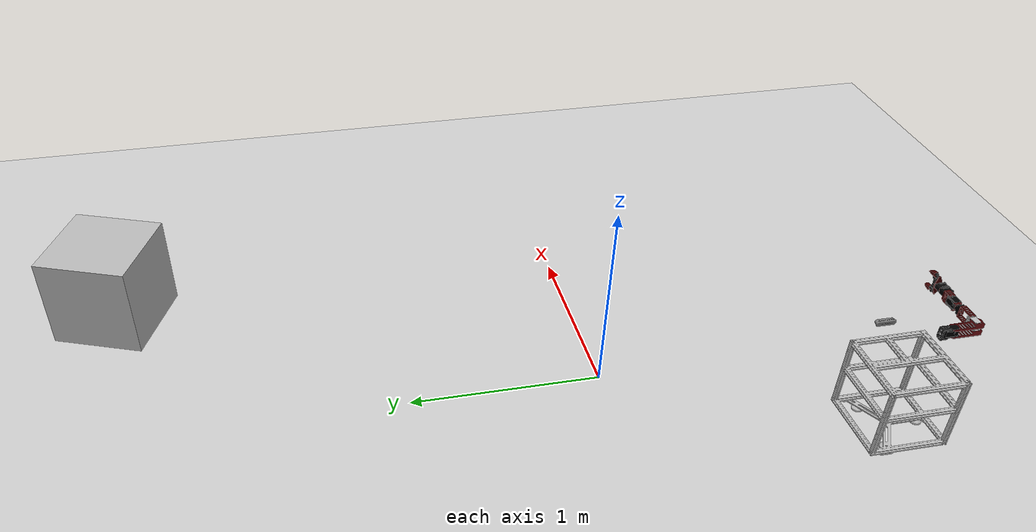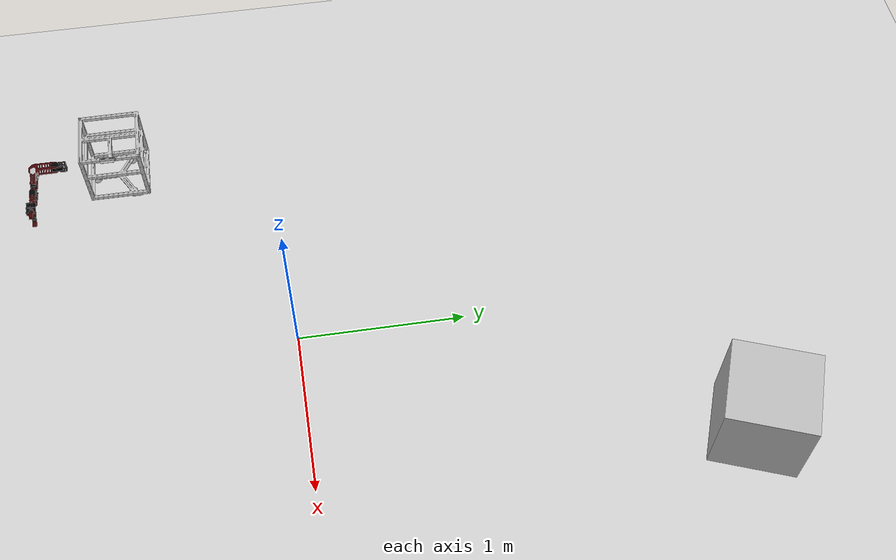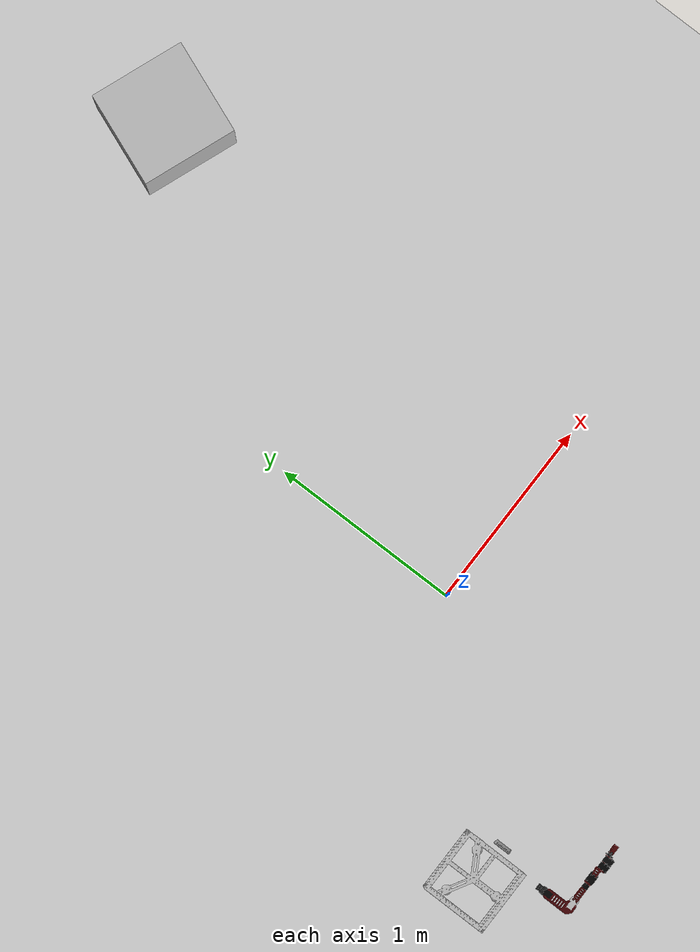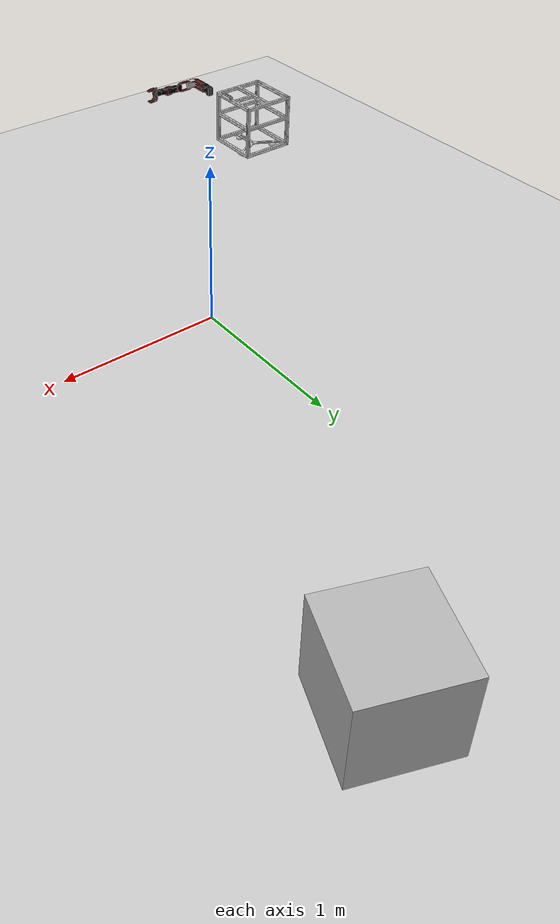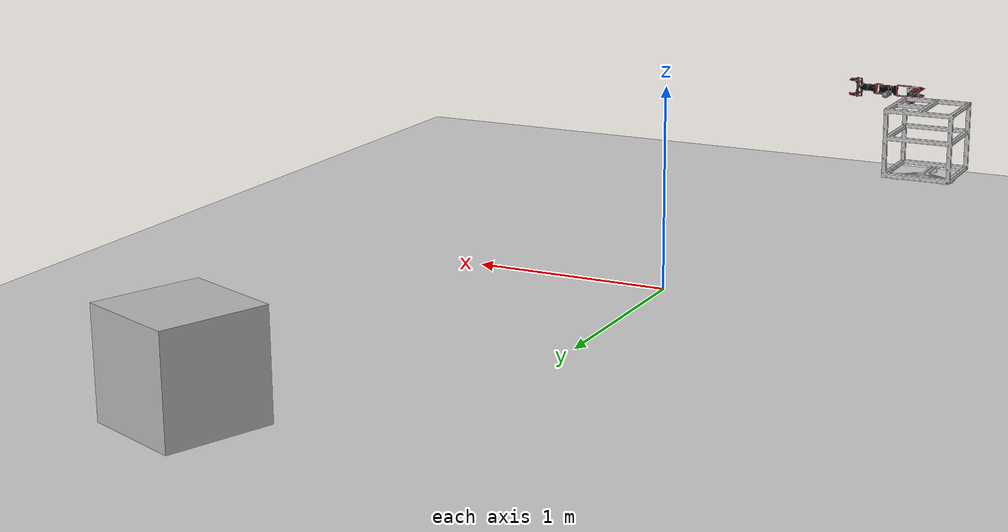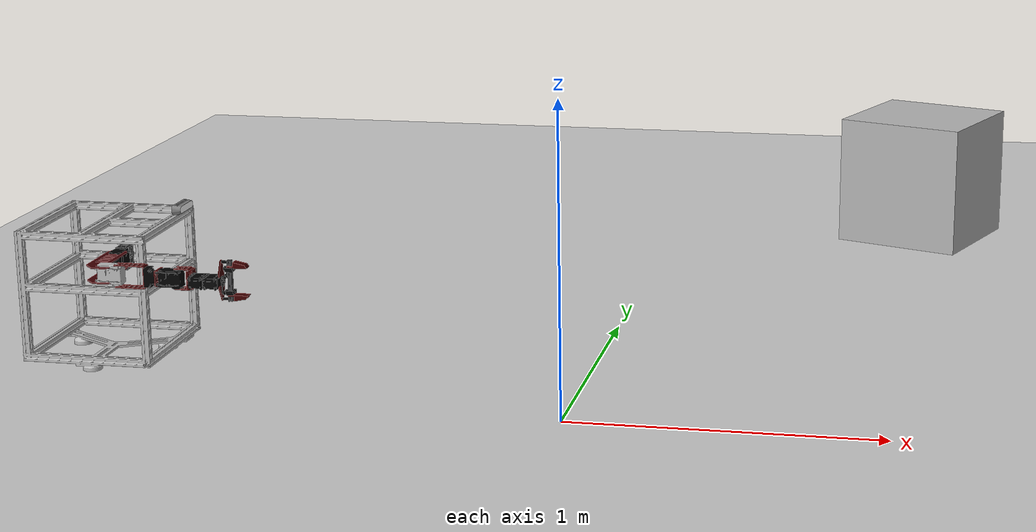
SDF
<sdf version='1.9'>
  <world name='base_world'>
    <physics name='1ms' type='ignored'>
      <max_step_size>0.001</max_step_size>
      <real_time_factor>1</real_time_factor>
      <real_time_update_rate>1000</real_time_update_rate>
    </physics>
    <plugin name='ignition::gazebo::systems::Physics' filename='ignition-gazebo-physics-system'/>
    <plugin name='ignition::gazebo::systems::UserCommands' filename='ignition-gazebo-user-commands-system'/>
    <plugin name='ignition::gazebo::systems::SceneBroadcaster' filename='ignition-gazebo-scene-broadcaster-system'/>
    <plugin name='ignition::gazebo::systems::Sensors' filename='ignition-gazebo-sensors-system'/>
    <gui fullscreen='false'>
      <plugin name='3D View' filename='GzScene3D'>
        <ignition-gui>
          <title>3D View</title>
          <property type='bool' key='showTitleBar'>false</property>
          <property type='string' key='state'>docked</property>
        </ignition-gui>
        <engine>ogre2</engine>
        <scene>scene</scene>
        <ambient_light>0.4 0.4 0.4</ambient_light>
        <background_color>0.8 0.8 0.8</background_color>
        <camera_pose>2 2 2 0 0.5 -2.5</camera_pose>
      </plugin>
      <plugin name='World control' filename='WorldControl'>
        <ignition-gui>
          <title>World control</title>
          <property type='bool' key='showTitleBar'>false</property>
          <property type='bool' key='resizable'>false</property>
          <property type='double' key='height'>72</property>
          <property type='double' key='width'>121</property>
          <property type='double' key='z'>1</property>
          <property type='string' key='state'>floating</property>
          <anchors target='3D View'>
            <line own='left' target='left'/>
            <line own='bottom' target='bottom'/>
          </anchors>
        </ignition-gui>
        <play_pause>true</play_pause>
        <step>true</step>
        <start_paused>true</start_paused>
      </plugin>
      <plugin name='World stats' filename='WorldStats'>
        <ignition-gui>
          <title>World stats</title>
          <property type='bool' key='showTitleBar'>false</property>
          <property type='bool' key='resizable'>false</property>
          <property type='double' key='height'>110</property>
          <property type='double' key='width'>290</property>
          <property type='double' key='z'>1</property>
          <property type='string' key='state'>floating</property>
          <anchors target='3D View'>
            <line own='right' target='right'/>
            <line own='bottom' target='bottom'/>
          </anchors>
        </ignition-gui>
        <sim_time>true</sim_time>
        <real_time>true</real_time>
        <real_time_factor>true</real_time_factor>
        <iterations>true</iterations>
      </plugin>
    </gui>
    <gravity>0 0 -9.8</gravity>
    <magnetic_field>6e-06 2.3e-05 -4.2e-05</magnetic_field>
    <atmosphere type='adiabatic'/>
    <scene>
      <ambient>0.4 0.4 0.4 1</ambient>
      <background>0.7 0.7 0.7 1</background>
      <shadows>true</shadows>
    </scene>
    <model name='ground_plane'>
      <static>true</static>
      <link name='link'>
        <collision name='collision'>
          <geometry>
            <plane>
              <normal>0 0 1</normal>
              <size>100 100</size>
            </plane>
          </geometry>
          <surface>
            <friction>
              <ode>
                <mu>0</mu>
                <mu2>0</mu2>
              </ode>
            </friction>
            <bounce/>
            <contact/>
          </surface>
        </collision>
        <visual name='visual'>
          <geometry>
            <plane>
              <normal>0 0 1</normal>
              <size>100 100</size>
            </plane>
          </geometry>
          <material>
            <ambient>0.8 0.8 0.8 1</ambient>
            <diffuse>0.8 0.8 0.8 1</diffuse>
            <specular>0.8 0.8 0.8 1</specular>
          </material>
        </visual>
        <pose>0 0 0 0 -0 0</pose>
        <inertial>
          <pose>0 0 0 0 -0 0</pose>
          <mass>1</mass>
          <inertia>
            <ixx>1</ixx>
            <ixy>0</ixy>
            <ixz>0</ixz>
            <iyy>1</iyy>
            <iyz>0</iyz>
            <izz>1</izz>
          </inertia>
        </inertial>
        <enable_wind>false</enable_wind>
      </link>
      <pose>0 0 0 0 -0 0</pose>
      <self_collide>false</self_collide>
    </model>

    <include>
      <uri>model://apriltag_board</uri>
      <pose> 1 2.5 0.25 0 0 1.20 </pose>
    </include>

    <include>`
      <uri>model://abv</uri>
      <pose>-1 -1 0.5 0 0 0 </pose>
      <plugin filename="libwrench_applicator.so" name="WrenchApplicator">
        <topic>gazebo/wrench_cmd</topic>
        <frame>body</frame>
      </plugin>
      <plugin filename="libpose_publisher.so" name="PosePublisher">
        <topic_name>/gazebo/robot/state</topic_name>
        <link_name>base_link</link_name>
        <rate>50</rate>
      </plugin>
    </include>

    <light name='sun' type='directional'>
      <pose>0 0 10 0 -0 0</pose>
      <cast_shadows>true</cast_shadows>
      <intensity>1</intensity>
      <direction>-0.5 0.1 -0.9</direction>
      <diffuse>0.8 0.8 0.8 1</diffuse>
      <specular>0.2 0.2 0.2 1</specular>
      <attenuation>
        <range>1000</range>
        <linear>0.01</linear>
        <constant>0.90000000000000002</constant>
        <quadratic>0.001</quadratic>
      </attenuation>
      <spot>
        <inner_angle>0</inner_angle>
        <outer_angle>0</outer_angle>
        <falloff>0</falloff>
      </spot>
    </light>
  </world>
</sdf>

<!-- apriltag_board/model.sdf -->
<sdf version="1.6">
  <model name="apriltag_board">
    <static>false</static>

    <link name="link">
      <visual name="visual">
        <pose>0 0 0 0 0 -1.57</pose>
        <geometry>
          <mesh>
            <scale>0.25 0.25 0.25</scale>
            <uri>model://apriltag_board/meshes/testBoard.dae</uri>
          </mesh>
        </geometry>
        </visual>

      <!-- collision is optional, add if you want the object to be solid -->
      <collision name="collision">
        <geometry>
          <box>
            <size>0.5 0.5 0.5</size>
          </box>
        </geometry>
      </collision>
    </link>

  </model>
</sdf>

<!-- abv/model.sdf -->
<sdf version="1.8">
  <model name="abv">
    <static>false</static>
    <self_collide>true</self_collide>

    <!-- Mobile base -->
    <include>
      <uri>model://abv_chassis</uri>
      <name>base</name>
      <pose>0 0 0.04 0 0 0</pose>
    </include>

    <include>
      <uri>model://realsense_camera</uri>
      <name>camera</name>
      <pose>0.19 0.075 0.265 0 0 0</pose>
    </include>

    <include>
      <uri>model://widow_xl</uri>
      <name>wxr</name>
      <pose>0.155 -0.205 0.3 0 -1.57 1.57</pose>
      <plugin filename="libjoint_position_controller.so" name="JointPositionController">
        <publish>gazebo/joint_positions</publish>
        <command>gazebo/joint_commands</command>
        <initial_position>0 0 0 0</initial_position>
      </plugin>
    </include>

    <joint name="camera_mount" type="fixed">
      <parent>base::vehicle_frame</parent>
      <child>camera::camera_link</child>
    </joint>

    <!-- Fixed joint (weld) between the base link and the arm’s base link -->
    <joint name="weld_arm_to_base" type="fixed">
      <parent>base::vehicle_frame</parent>
      <child>wxr::widow_xl_base</child>
    </joint>

  </model>
</sdf>

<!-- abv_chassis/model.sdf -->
<sdf version="1.8">
  <model name="abv_chassis">

    <!-- Base link with mesh + inertia -->
    <link name="base_link">
      <pose>0 0 0 0 0 0</pose>

      <collision name="collision">
        <geometry>
          <mesh>
            <uri>model://abv_chassis/meshes/abv_v1.stl</uri>
          </mesh>
        </geometry>
        <surface>
          <friction>
            <ode>
              <mu>0</mu>
              <mu2>0</mu2>
            </ode>
          </friction>
        </surface>
      </collision>

      <visual name="visual">
        <geometry>
          <mesh>
            <uri>model://abv_chassis/meshes/abv_v2.dae</uri>
          </mesh>
        </geometry>
      </visual>

      <inertial>
        <mass>12.7</mass>
        <inertia>
          <ixx>0.3</ixx><iyy>0.3</iyy><izz>0.3</izz>
          <ixy>0</ixy><ixz>0</ixz><iyz>0</iyz>
        </inertia>
      </inertial>
    </link>

    <!-- Vehicle frame -->
    <link name="vehicle_frame">
      <pose relative_to="base_link">0.01 0.065 0.2 0 0 0</pose>

      <inertial>
        <mass>0.1</mass>
        <inertia>
          <ixx>0.1</ixx><iyy>0.1</iyy><izz>0.1</izz>
          <ixy>0</ixy><ixz>0</ixz><iyz>0</iyz>
        </inertia>
      </inertial>
    </link>

    <joint name="vehicle_frame_to_base" type="fixed">
      <parent>base_link</parent>
      <child>vehicle_frame</child>
    </joint>

  </model>
</sdf>

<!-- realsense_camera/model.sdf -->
<sdf version="1.7">
  <model name="realsense_camera">
    <pose>0 0 0 0 0 0</pose>

    <link name="camera_link">
      <pose>0 0 0 0 0 0</pose>
      <visual name="camera_visual">
        <pose>0 0 0.1 0 0 1.57</pose>
        <geometry>
          	<mesh>
             <uri>model://realsense_camera/meshes/RealSense_D435.dae</uri>
            </mesh>
          </geometry>
      </visual>

      <collision name="camera_collision">
        <pose>0 0 0 0 0 0</pose>
        <geometry>
            <mesh>
             <uri>model://realsense_camera/meshes/RealSense_D435.dae</uri>
            </mesh>
        </geometry>
      </collision>

      <!-- Left camera sensor -->
      <sensor name="left_camera" type="camera">
        <pose>0 0 0 0 0 0</pose>
        <camera>
          <horizontal_fov>1.3962634</horizontal_fov>
          <image>
            <width>640</width>
            <height>480</height>
            <format>R8G8B8</format>
          </image>
          <clip>
            <near>0.5</near>
            <far>3.5</far>
          </clip>
        </camera>
        <always_on>1</always_on>
        <update_rate>10</update_rate>
        <visualize>true</visualize>
      </sensor>

      <!-- Right camera sensor -->
      <sensor name="right_camera" type="camera">
        <pose>0 0.12 0 0 0 0</pose>
        <camera>
          <horizontal_fov>1.3962634</horizontal_fov>
          <image>
            <width>640</width>
            <height>480</height>
            <format>R8G8B8</format>
          </image>
          <clip>
            <near>0.5</near>
            <far>3.5</far>
          </clip>
        </camera>
        <always_on>1</always_on>
        <update_rate>10</update_rate>
        <visualize>true</visualize>
      </sensor>

      <!-- Inertial properties -->
      <inertial>
        <mass>0.1</mass>
        <inertia>
          <ixx>1e-5</ixx>
          <iyy>1e-5</iyy>
          <izz>1e-5</izz>
          <ixy>0</ixy>
          <ixz>0</ixz>
          <iyz>0</iyz>
        </inertia>
      </inertial>

    </link>
  </model>
</sdf>

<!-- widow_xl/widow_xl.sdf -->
<sdf version='1.9'>
  <model name='widow_xl'>
    <link name='widow_xl_base'>
      <inertial>
        <pose>0 0 0 0 0 0</pose>
        <mass>0.20000000000000001</mass>
        <inertia>
          <ixx>0.0001</ixx>
          <ixy>0</ixy>
          <ixz>0</ixz>
          <iyy>0.0001</iyy>
          <iyz>0</iyz>
          <izz>0.0001</izz>
        </inertia>
      </inertial>
      <collision name='widow_xl_base_fixed_joint_lump__shoulder_mount_collision'>
        <pose>0 0 0 0 0 0</pose>
        <geometry>
          <box>
            <size>0.07 0.07 0.05</size>
          </box>
        </geometry>
      </collision>
      <visual name='widow_xl_base_fixed_joint_lump__shoulder_mount_visual'>
        <pose>0 0 0 0 0 0</pose>
        <geometry>
          <mesh>
            <scale>1 1 1</scale>
            <uri>model://widow_xl/meshes/shoulder_mount.dae</uri>
          </mesh>
        </geometry>
      </visual>
    </link>
    <joint name='shoulder_joint' type='revolute'>
      <pose relative_to='widow_xl_base'>0 0 0 0 0 0</pose>
      <parent>widow_xl_base</parent>
      <child>shoulder_link</child>
      <axis>
        <xyz>1 0 0</xyz>
        <limit>
          <lower>-1.5700000000000001</lower>
          <upper>1.5700000000000001</upper>
          <effort>1000</effort>
          <velocity>1</velocity>
        </limit>
        <dynamics>
          <damping>5</damping>
          <friction>0.5</friction>
          <spring_reference>0</spring_reference>
          <spring_stiffness>0</spring_stiffness>
        </dynamics>
      </axis>
    </joint>
    <link name='shoulder_link'>
      <pose relative_to='shoulder_joint'>0 0 0 0 0 0</pose>
      <inertial>
        <pose>0 -0.025 0.07000000000000001 0 0 0</pose>
        <mass>0.29999999999999999</mass>
        <inertia>
          <ixx>0.00050000000000000001</ixx>
          <ixy>0</ixy>
          <ixz>0</ixz>
          <iyy>0.00050000000000000001</iyy>
          <iyz>0</iyz>
          <izz>0.0001</izz>
        </inertia>
      </inertial>
      <collision name='shoulder_link_collision'>
        <pose>0 -0.025 0.07000000000000001 0 0 0</pose>
        <geometry>
          <cylinder>
            <length>0.14499999999999999</length>
            <radius>0.029999999999999999</radius>
          </cylinder>
        </geometry>
      </collision>
      <visual name='shoulder_link_visual'>
        <pose>0 0 0 0 0 0</pose>
        <geometry>
          <mesh>
            <scale>1 1 1</scale>
            <uri>model://widow_xl/meshes/shoulder.dae</uri>
          </mesh>
        </geometry>
      </visual>
    </link>
    <joint name='forearm_joint' type='revolute'>
      <pose relative_to='shoulder_link'>0 -0.0525 0.145 0 0 0</pose>
      <parent>shoulder_link</parent>
      <child>forearm_link</child>
      <axis>
        <xyz>1 0 0</xyz>
        <limit>
          <lower>-1.5700000000000001</lower>
          <upper>1.5700000000000001</upper>
          <effort>1000</effort>
          <velocity>1</velocity>
        </limit>
        <dynamics>
          <damping>5</damping>
          <friction>0.5</friction>
          <spring_reference>0</spring_reference>
          <spring_stiffness>0</spring_stiffness>
        </dynamics>
      </axis>
    </joint>
    <link name='forearm_link'>
      <pose relative_to='forearm_joint'>0 0 0 0 0 0</pose>
      <inertial>
        <pose>0 -0.075 0 0 0 0</pose>
        <mass>0.25</mass>
        <inertia>
          <ixx>0.00050000000000000001</ixx>
          <ixy>0</ixy>
          <ixz>0</ixz>
          <iyy>0.0001</iyy>
          <iyz>0</iyz>
          <izz>0.00050000000000000001</izz>
        </inertia>
      </inertial>
      <collision name='forearm_link_collision'>
        <pose>0 -0.075 0 0 0 0</pose>
        <geometry>
          <cylinder>
            <length>0.14999999999999999</length>
            <radius>0.025000000000000001</radius>
          </cylinder>
        </geometry>
      </collision>
      <visual name='forearm_link_visual'>
        <pose>0 0 0 0 0 0</pose>
        <geometry>
          <mesh>
            <scale>1 1 1</scale>
            <uri>model://widow_xl/meshes/forearm.dae</uri>
          </mesh>
        </geometry>
      </visual>
    </link>
    <joint name='wrist_joint' type='revolute'>
      <pose relative_to='forearm_link'>0 -0.15 0 0 0 0</pose>
      <parent>forearm_link</parent>
      <child>wrist_link</child>
      <axis>
        <xyz>1 0 0</xyz>
        <limit>
          <lower>-1.5700000000000001</lower>
          <upper>1.5700000000000001</upper>
          <effort>1000</effort>
          <velocity>1</velocity>
        </limit>
        <dynamics>
          <damping>5</damping>
          <friction>0.5</friction>
          <spring_reference>0</spring_reference>
          <spring_stiffness>0</spring_stiffness>
        </dynamics>
      </axis>
    </joint>
    <link name='wrist_link'>
      <pose relative_to='wrist_joint'>0 0 0 0 0 0</pose>
      <inertial>
        <pose>0 -0.0375 0 0 0 0</pose>
        <mass>0.14999999999999999</mass>
        <inertia>
          <ixx>0.0001</ixx>
          <ixy>0</ixy>
          <ixz>0</ixz>
          <iyy>5.0000000000000002e-05</iyy>
          <iyz>0</iyz>
          <izz>0.0001</izz>
        </inertia>
      </inertial>
      <collision name='wrist_link_collision'>
        <pose>0 -0.0375 0 0 0 0</pose>
        <geometry>
          <cylinder>
            <length>0.074999999999999997</length>
            <radius>0.02</radius>
          </cylinder>
        </geometry>
      </collision>
      <visual name='wrist_link_visual'>
        <pose>0 0 0 0 0 0</pose>
        <geometry>
          <mesh>
            <scale>1 1 1</scale>
            <uri>model://widow_xl/meshes/wrist.dae</uri>
          </mesh>
        </geometry>
      </visual>
    </link>
    <joint name='wrist_rotate_joint' type='revolute'>
      <pose relative_to='wrist_link'>0 -0.075 0 0 0 -1.57</pose>
      <parent>wrist_link</parent>
      <child>wrist_rotate_link</child>
      <axis>
        <xyz>1 0 0</xyz>
        <limit>
          <lower>-1.5700000000000001</lower>
          <upper>1.5700000000000001</upper>
          <effort>1000</effort>
          <velocity>1</velocity>
        </limit>
        <dynamics>
          <damping>5</damping>
          <friction>0.5</friction>
          <spring_reference>0</spring_reference>
          <spring_stiffness>0</spring_stiffness>
        </dynamics>
      </axis>
    </joint>
    <link name='wrist_rotate_link'>
      <pose relative_to='wrist_rotate_joint'>0 0 0 0 0 0</pose>
      <inertial>
        <pose>0.02 0 0 0 0 0</pose>
        <mass>0.10000000000000001</mass>
        <inertia>
          <ixx>5.0000000000000002e-05</ixx>
          <ixy>0</ixy>
          <ixz>0</ixz>
          <iyy>5.0000000000000002e-05</iyy>
          <iyz>0</iyz>
          <izz>5.0000000000000002e-05</izz>
        </inertia>
      </inertial>
      <collision name='wrist_rotate_link_collision'>
        <pose>0.02 0 0 0 0 0</pose>
        <geometry>
          <cylinder>
            <length>0.040000000000000001</length>
            <radius>0.02</radius>
          </cylinder>
        </geometry>
      </collision>
      <visual name='wrist_rotate_link_visual'>
        <pose>0 0 0 0 0 0</pose>
        <geometry>
          <mesh>
            <scale>1 1 1</scale>
            <uri>model://widow_xl/meshes/wrist_rotate.dae</uri>
          </mesh>
        </geometry>
      </visual>
    </link>
    <joint name='left_finger_joint' type='prismatic'>
      <pose relative_to='wrist_rotate_link'>0.0575 0.035 0 0 0 0</pose>
      <parent>wrist_rotate_link</parent>
      <child>left_finger_link</child>
      <axis>
        <xyz>0 -1 0</xyz>
        <limit>
          <lower>0</lower>
          <upper>0.032500000000000001</upper>
          <effort>1000</effort>
          <velocity>1</velocity>
        </limit>
        <dynamics>
          <damping>5</damping>
          <friction>0.5</friction>
          <spring_reference>0</spring_reference>
          <spring_stiffness>0</spring_stiffness>
        </dynamics>
      </axis>
    </joint>
    <link name='left_finger_link'>
      <pose relative_to='left_finger_joint'>0 0 0 0 0 0</pose>
      <inertial>
        <pose>0 0 0 0 0 0</pose>
        <mass>0.050000000000000003</mass>
        <inertia>
          <ixx>1.0000000000000001e-05</ixx>
          <ixy>0</ixy>
          <ixz>0</ixz>
          <iyy>1.0000000000000001e-05</iyy>
          <iyz>0</iyz>
          <izz>1.0000000000000001e-05</izz>
        </inertia>
      </inertial>
      <collision name='left_finger_link_collision'>
        <pose>0 0 0 0 0 0</pose>
        <geometry>
          <box>
            <size>0.015 0.03 0.04</size>
          </box>
        </geometry>
      </collision>
      <visual name='left_finger_link_visual'>
        <pose>0 0 0 0 0 1.57</pose>
        <geometry>
          <mesh>
            <scale>1 1 1</scale>
            <uri>model://widow_xl/meshes/finger.dae</uri>
          </mesh>
        </geometry>
      </visual>
    </link>
    <joint name='right_finger_joint' type='prismatic'>
      <pose relative_to='wrist_rotate_link'>0.0575 -0.035 0 0 0 0</pose>
      <parent>wrist_rotate_link</parent>
      <child>right_finger_link</child>
      <axis>
        <xyz>0 1 0</xyz>
        <limit>
          <lower>0</lower>
          <upper>0.032500000000000001</upper>
          <effort>1000</effort>
          <velocity>1</velocity>
        </limit>
        <dynamics>
          <damping>5</damping>
          <friction>0.5</friction>
          <spring_reference>0</spring_reference>
          <spring_stiffness>0</spring_stiffness>
        </dynamics>
      </axis>
    </joint>
    <link name='right_finger_link'>
      <pose relative_to='right_finger_joint'>0 0 0 0 0 0</pose>
      <inertial>
        <pose>0 0 0 0 0 0</pose>
        <mass>0.050000000000000003</mass>
        <inertia>
          <ixx>1.0000000000000001e-05</ixx>
          <ixy>0</ixy>
          <ixz>0</ixz>
          <iyy>1.0000000000000001e-05</iyy>
          <iyz>0</iyz>
          <izz>1.0000000000000001e-05</izz>
        </inertia>
      </inertial>
      <collision name='right_finger_link_collision'>
        <pose>0 0 0 0 0 0</pose>
        <geometry>
          <box>
            <size>0.015 0.03 0.04</size>
          </box>
        </geometry>
      </collision>
      <visual name='right_finger_link_visual'>
        <pose>0 0 0 3.14159 0 -1.57</pose>
        <geometry>
          <mesh>
            <scale>1 1 1</scale>
            <uri>model://widow_xl/meshes/finger.dae</uri>
          </mesh>
        </geometry>
      </visual>
    </link>
    <frame name='mount_joint' attached_to='widow_xl_base'>
      <pose>0 0 0 0 -0 0</pose>
    </frame>
    <frame name='shoulder_mount' attached_to='mount_joint'/>
    <frame name='gripper_joint' attached_to='wrist_rotate_link'>
      <pose>0.0575 0 0 0 -0 0</pose>
    </frame>
    <frame name='gripper_link' attached_to='gripper_joint'/>
  </model>
</sdf>
